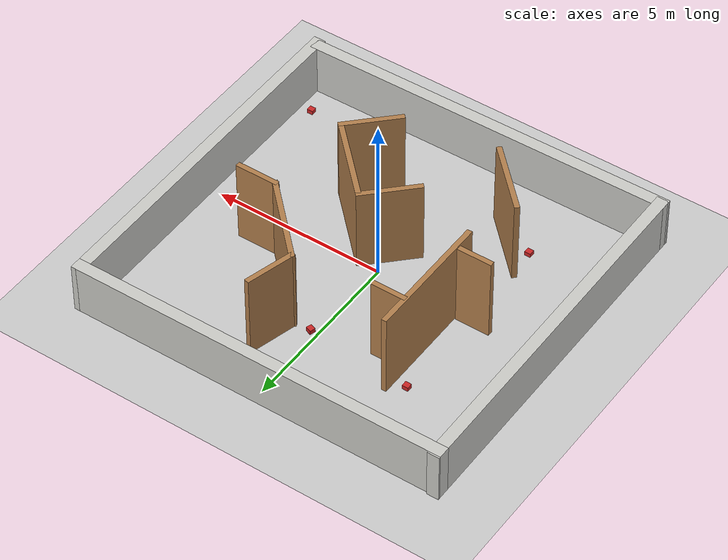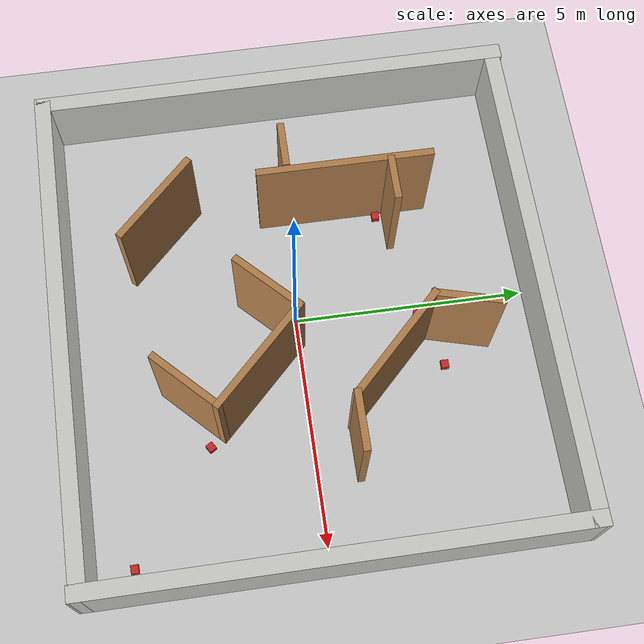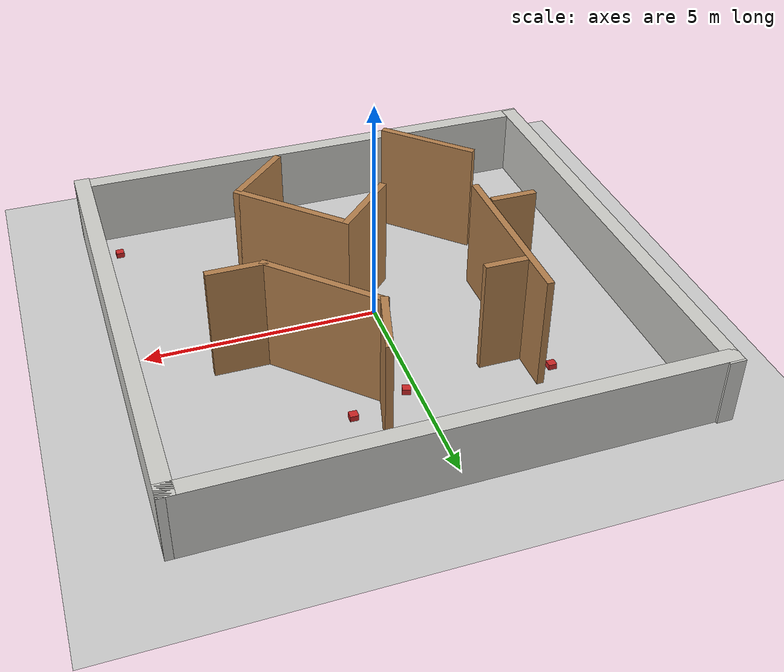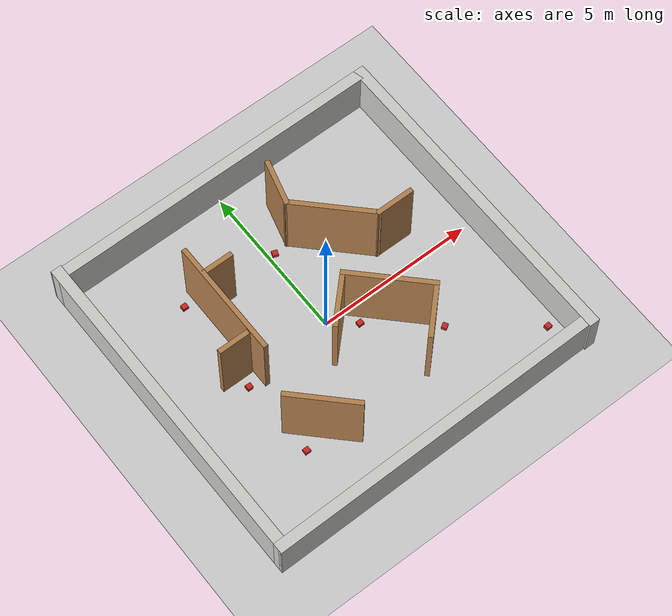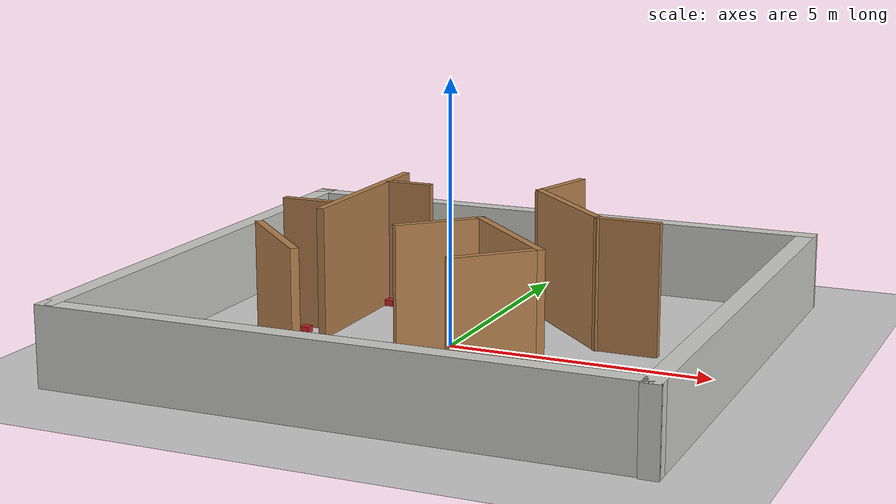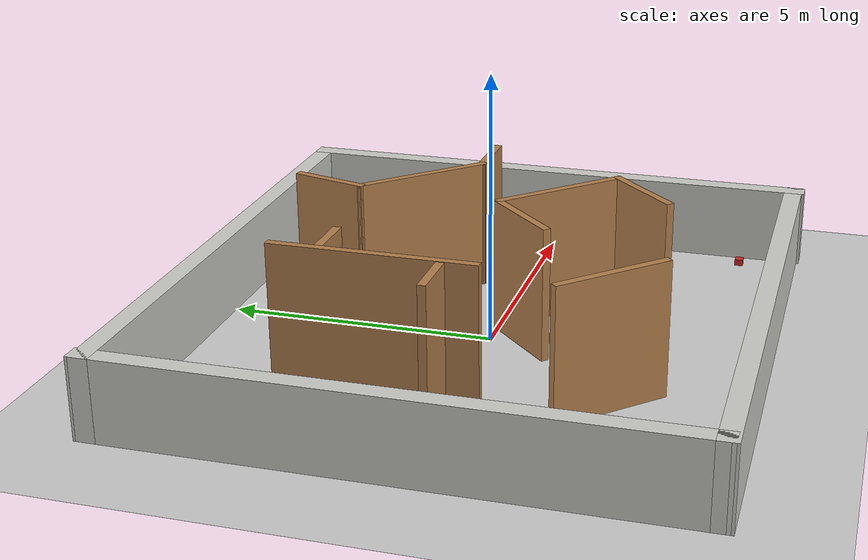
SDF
<sdf version="1.7">
 <world name="default">
  <light name="sun" type="directional">
   <cast_shadows>0</cast_shadows>
   <pose>0 0 10 0 -0 0</pose>
   <diffuse>0.8 0.8 0.8 1</diffuse>
   <specular>0.2 0.2 0.2 1</specular>
   <attenuation>
    <range>1000</range>
    <constant>0.9</constant>
    <linear>0.01</linear>
    <quadratic>0.001</quadratic>
   </attenuation>
   <direction>-0.5 0.1 -0.9</direction>
   <spot><inner_angle>0</inner_angle><outer_angle>0</outer_angle><falloff>0</falloff></spot>
  </light>
  <model name="ground_plane">
   <static>1</static>
   <link name="link">
    <collision name="collision">
     <geometry><plane><normal>0 0 1</normal><size>100 100</size></plane></geometry>
     <surface><friction><ode><mu>100</mu><mu2>50</mu2></ode></friction></surface>
    </collision>
    <visual name="visual">
     <cast_shadows>0</cast_shadows>
     <geometry><plane><normal>0 0 1</normal><size>100 100</size></plane></geometry>
     <material>
      <script><uri>file://media/materials/scripts/gazebo.material</uri><name>Gazebo/Grey</name></script>
     </material>
    </visual>
   </link>
  </model>
  <gravity>0 0 -9.8</gravity>
  <scene><ambient>0.4 0.4 0.4 1</ambient><background>0.7 0.7 0.7 1</background><shadows>1</shadows></scene>
  <magnetic_field>6e-06 2.3e-05 -4.2e-05</magnetic_field>
  <atmosphere type="adiabatic"/>
  <physics type="ode">
   <max_step_size>0.001</max_step_size>
   <real_time_factor>1</real_time_factor>
   <real_time_update_rate>1000</real_time_update_rate>
  </physics>
  <audio><device>default</device></audio>
  <spherical_coordinates>
   <surface_model>EARTH_WGS84</surface_model>
   <latitude_deg>0</latitude_deg>
   <longitude_deg>0</longitude_deg>
   <elevation>0</elevation>
   <heading_deg>0</heading_deg>
  </spherical_coordinates>
  <model name="blue_box_clone_1_clone">
   <link name="link">
    <inertial>
     <mass>1</mass>
     <inertia>
      <ixx>0.166667</ixx>
      <ixy>0</ixy>
      <ixz>0</ixz>
      <iyy>0.166667</iyy>
      <iyz>0</iyz>
      <izz>0.166667</izz>
     </inertia>
    </inertial>
    <visual name="visual">
     <geometry><box><size>0.177426 0.164052 0.124949</size></box></geometry>
     <material>
      <script><name>Gazebo/Red</name><uri>file://media/materials/scripts/gazebo.material</uri></script>
      <shader type="pixel"><normal_map>__default__</normal_map></shader>
      <ambient>0 0 1 1</ambient>
      <diffuse>0 0 1 1</diffuse>
      <specular>0.1 0.1 0.1 1</specular>
      <emissive>0 0 0 1</emissive>
     </material>
    </visual>
    <collision name="collision">
     <geometry><box><size>0.177426 0.164052 0.124949</size></box></geometry>
     <surface>
      <friction>
       <ode><mu>1</mu><mu2>1</mu2><fdir1>0 0 0</fdir1><slip1>0</slip1><slip2>0</slip2></ode>
       <torsional>
        <coefficient>1</coefficient>
        <patch_radius>0</patch_radius>
        <surface_radius>0</surface_radius>
        <use_patch_radius>1</use_patch_radius>
        <ode><slip>0</slip></ode>
       </torsional>
      </friction>
      <bounce><restitution_coefficient>0</restitution_coefficient><threshold>1e+06</threshold></bounce>
      <contact>
       <collide_without_contact>0</collide_without_contact>
       <collide_without_contact_bitmask>1</collide_without_contact_bitmask>
       <collide_bitmask>1</collide_bitmask>
       <ode>
        <soft_cfm>0</soft_cfm>
        <soft_erp>0.2</soft_erp>
        <kp>1e+13</kp>
        <kd>1</kd>
        <max_vel>0.01</max_vel>
        <min_depth>0</min_depth>
       </ode>
       <bullet>
        <split_impulse>1</split_impulse>
        <split_impulse_penetration_threshold>-0.01</split_impulse_penetration_threshold>
        <soft_cfm>0</soft_cfm>
        <soft_erp>0.2</soft_erp>
        <kp>1e+13</kp>
        <kd>1</kd>
       </bullet>
      </contact>
     </surface>
    </collision>
   </link>
   <static>0</static>
   <pose>-2.85654 2.86595 0.062475 -1e-06 -3e-06 1e-06</pose>
  </model>
  <model name="unit_box_1_clone_0_clone_clone">
   <link name="link">
    <inertial>
     <mass>1</mass>
     <inertia>
      <ixx>0.166667</ixx>
      <ixy>0</ixy>
      <ixz>0</ixz>
      <iyy>0.166667</iyy>
      <iyz>0</iyz>
      <izz>0.166667</izz>
     </inertia>
    </inertial>
    <visual name="visual">
     <geometry><box><size>0.177426 0.164052 0.124949</size></box></geometry>
     <material>
      <script><name>Gazebo/Red</name><uri>file://media/materials/scripts/gazebo.material</uri></script>
      <shader type="pixel"><normal_map>__default__</normal_map></shader>
      <ambient>1 0 0 1</ambient>
      <diffuse>1 0 0 1</diffuse>
      <specular>0.1 0.1 0.1 1</specular>
      <emissive>0 0 0 1</emissive>
     </material>
    </visual>
    <collision name="collision">
     <geometry><box><size>0.177426 0.164052 0.124949</size></box></geometry>
     <surface>
      <friction>
       <ode><mu>1</mu><mu2>1</mu2><fdir1>0 0 0</fdir1><slip1>0</slip1><slip2>0</slip2></ode>
       <torsional>
        <coefficient>1</coefficient>
        <patch_radius>0</patch_radius>
        <surface_radius>0</surface_radius>
        <use_patch_radius>1</use_patch_radius>
        <ode><slip>0</slip></ode>
       </torsional>
      </friction>
      <bounce><restitution_coefficient>0</restitution_coefficient><threshold>1e+06</threshold></bounce>
      <contact>
       <collide_without_contact>0</collide_without_contact>
       <collide_without_contact_bitmask>1</collide_without_contact_bitmask>
       <collide_bitmask>1</collide_bitmask>
       <ode>
        <soft_cfm>0</soft_cfm>
        <soft_erp>0.2</soft_erp>
        <kp>1e+13</kp>
        <kd>1</kd>
        <max_vel>0.01</max_vel>
        <min_depth>0</min_depth>
       </ode>
       <bullet>
        <split_impulse>1</split_impulse>
        <split_impulse_penetration_threshold>-0.01</split_impulse_penetration_threshold>
        <soft_cfm>0</soft_cfm>
        <soft_erp>0.2</soft_erp>
        <kp>1e+13</kp>
        <kd>1</kd>
       </bullet>
      </contact>
     </surface>
    </collision>
   </link>
   <static>0</static>
   <pose>-2.2666 2.12737 0.062474 0 -0 -1.2e-05</pose>
  </model>
  <model name="Green1_clone_0_clone">
   <link name="link">
    <inertial>
     <mass>1</mass>
     <inertia>
      <ixx>0.166667</ixx>
      <ixy>0</ixy>
      <ixz>0</ixz>
      <iyy>0.166667</iyy>
      <iyz>0</iyz>
      <izz>0.166667</izz>
     </inertia>
    </inertial>
    <visual name="visual">
     <geometry><box><size>0.177426 0.164052 0.124949</size></box></geometry>
     <material>
      <script><name>Gazebo/Red</name><uri>file://media/materials/scripts/gazebo.material</uri></script>
      <shader type="pixel"><normal_map>__default__</normal_map></shader>
      <ambient>0 1 0 1</ambient>
      <diffuse>0 1 0 1</diffuse>
      <specular>0.1 0.1 0.1 1</specular>
      <emissive>0 0 0 1</emissive>
     </material>
    </visual>
    <collision name="collision">
     <geometry><box><size>0.177426 0.164052 0.124949</size></box></geometry>
     <surface>
      <friction>
       <ode><mu>1</mu><mu2>1</mu2><fdir1>0 0 0</fdir1><slip1>0</slip1><slip2>0</slip2></ode>
       <torsional>
        <coefficient>1</coefficient>
        <patch_radius>0</patch_radius>
        <surface_radius>0</surface_radius>
        <use_patch_radius>1</use_patch_radius>
        <ode><slip>0</slip></ode>
       </torsional>
      </friction>
      <bounce><restitution_coefficient>0</restitution_coefficient><threshold>1e+06</threshold></bounce>
      <contact>
       <collide_without_contact>0</collide_without_contact>
       <collide_without_contact_bitmask>1</collide_without_contact_bitmask>
       <collide_bitmask>1</collide_bitmask>
       <ode>
        <soft_cfm>0</soft_cfm>
        <soft_erp>0.2</soft_erp>
        <kp>1e+13</kp>
        <kd>1</kd>
        <max_vel>0.01</max_vel>
        <min_depth>0</min_depth>
       </ode>
       <bullet>
        <split_impulse>1</split_impulse>
        <split_impulse_penetration_threshold>-0.01</split_impulse_penetration_threshold>
        <soft_cfm>0</soft_cfm>
        <soft_erp>0.2</soft_erp>
        <kp>1e+13</kp>
        <kd>1</kd>
       </bullet>
      </contact>
     </surface>
    </collision>
   </link>
   <static>0</static>
   <pose>-2.90127 -0.248467 0.062475 3e-06 1e-06 -1.4e-05</pose>
  </model>
  <model name="Green1_clone_0_clone_0">
   <link name="link">
    <inertial>
     <mass>1</mass>
     <inertia>
      <ixx>0.166667</ixx>
      <ixy>0</ixy>
      <ixz>0</ixz>
      <iyy>0.166667</iyy>
      <iyz>0</iyz>
      <izz>0.166667</izz>
     </inertia>
    </inertial>
    <visual name="visual">
     <geometry><box><size>0.177426 0.164052 0.124949</size></box></geometry>
     <material>
      <script><name>Gazebo/Red</name><uri>file://media/materials/scripts/gazebo.material</uri></script>
      <shader type="pixel"><normal_map>__default__</normal_map></shader>
      <ambient>0 1 0 1</ambient>
      <diffuse>0 1 0 1</diffuse>
      <specular>0.1 0.1 0.1 1</specular>
      <emissive>0 0 0 1</emissive>
     </material>
    </visual>
    <collision name="collision">
     <geometry><box><size>0.177426 0.164052 0.124949</size></box></geometry>
     <surface>
      <friction>
       <ode><mu>1</mu><mu2>1</mu2><fdir1>0 0 0</fdir1><slip1>0</slip1><slip2>0</slip2></ode>
       <torsional>
        <coefficient>1</coefficient>
        <patch_radius>0</patch_radius>
        <surface_radius>0</surface_radius>
        <use_patch_radius>1</use_patch_radius>
        <ode><slip>0</slip></ode>
       </torsional>
      </friction>
      <bounce><restitution_coefficient>0</restitution_coefficient><threshold>1e+06</threshold></bounce>
      <contact>
       <collide_without_contact>0</collide_without_contact>
       <collide_without_contact_bitmask>1</collide_without_contact_bitmask>
       <collide_bitmask>1</collide_bitmask>
       <ode>
        <soft_cfm>0</soft_cfm>
        <soft_erp>0.2</soft_erp>
        <kp>1e+13</kp>
        <kd>1</kd>
        <max_vel>0.01</max_vel>
        <min_depth>0</min_depth>
       </ode>
       <bullet>
        <split_impulse>1</split_impulse>
        <split_impulse_penetration_threshold>-0.01</split_impulse_penetration_threshold>
        <soft_cfm>0</soft_cfm>
        <soft_erp>0.2</soft_erp>
        <kp>1e+13</kp>
        <kd>1</kd>
       </bullet>
      </contact>
     </surface>
    </collision>
   </link>
   <static>0</static>
   <pose>-2.80472 -2.75225 0.062475 0 -4e-06 -6e-06</pose>
  </model>
  <model name="unit_box_1_clone_0_clone_clone_clone">
   <link name="link">
    <inertial>
     <mass>1</mass>
     <inertia>
      <ixx>0.166667</ixx>
      <ixy>0</ixy>
      <ixz>0</ixz>
      <iyy>0.166667</iyy>
      <iyz>0</iyz>
      <izz>0.166667</izz>
     </inertia>
    </inertial>
    <visual name="visual">
     <geometry><box><size>0.177426 0.164052 0.124949</size></box></geometry>
     <material>
      <script><name>Gazebo/Red</name><uri>file://media/materials/scripts/gazebo.material</uri></script>
      <shader type="pixel"><normal_map>__default__</normal_map></shader>
      <ambient>1 0 0 1</ambient>
      <diffuse>1 0 0 1</diffuse>
      <specular>0.1 0.1 0.1 1</specular>
      <emissive>0 0 0 1</emissive>
     </material>
    </visual>
    <collision name="collision">
     <geometry><box><size>0.177426 0.164052 0.124949</size></box></geometry>
     <surface>
      <friction>
       <ode><mu>1</mu><mu2>1</mu2><fdir1>0 0 0</fdir1><slip1>0</slip1><slip2>0</slip2></ode>
       <torsional>
        <coefficient>1</coefficient>
        <patch_radius>0</patch_radius>
        <surface_radius>0</surface_radius>
        <use_patch_radius>1</use_patch_radius>
        <ode><slip>0</slip></ode>
       </torsional>
      </friction>
      <bounce><restitution_coefficient>0</restitution_coefficient><threshold>1e+06</threshold></bounce>
      <contact>
       <collide_without_contact>0</collide_without_contact>
       <collide_without_contact_bitmask>1</collide_without_contact_bitmask>
       <collide_bitmask>1</collide_bitmask>
       <ode>
        <soft_cfm>0</soft_cfm>
        <soft_erp>0.2</soft_erp>
        <kp>1e+13</kp>
        <kd>1</kd>
        <max_vel>0.01</max_vel>
        <min_depth>0</min_depth>
       </ode>
       <bullet>
        <split_impulse>1</split_impulse>
        <split_impulse_penetration_threshold>-0.01</split_impulse_penetration_threshold>
        <soft_cfm>0</soft_cfm>
        <soft_erp>0.2</soft_erp>
        <kp>1e+13</kp>
        <kd>1</kd>
       </bullet>
      </contact>
     </surface>
    </collision>
   </link>
   <static>0</static>
   <pose>4.90389 -3.92478 0.062475 -0 4e-06 0.034203</pose>
  </model>
  <model name="blue_box_clone_1_clone_0">
   <link name="link">
    <inertial>
     <mass>1</mass>
     <inertia>
      <ixx>0.166667</ixx>
      <ixy>0</ixy>
      <ixz>0</ixz>
      <iyy>0.166667</iyy>
      <iyz>0</iyz>
      <izz>0.166667</izz>
     </inertia>
    </inertial>
    <visual name="visual">
     <geometry><box><size>0.177426 0.164052 0.124949</size></box></geometry>
     <material>
      <script><name>Gazebo/Red</name><uri>file://media/materials/scripts/gazebo.material</uri></script>
      <shader type="pixel"><normal_map>__default__</normal_map></shader>
      <ambient>0 0 1 1</ambient>
      <diffuse>0 0 1 1</diffuse>
      <specular>0.1 0.1 0.1 1</specular>
      <emissive>0 0 0 1</emissive>
     </material>
    </visual>
    <collision name="collision">
     <geometry><box><size>0.177426 0.164052 0.124949</size></box></geometry>
     <surface>
      <friction>
       <ode><mu>1</mu><mu2>1</mu2><fdir1>0 0 0</fdir1><slip1>0</slip1><slip2>0</slip2></ode>
       <torsional>
        <coefficient>1</coefficient>
        <patch_radius>0</patch_radius>
        <surface_radius>0</surface_radius>
        <use_patch_radius>1</use_patch_radius>
        <ode><slip>0</slip></ode>
       </torsional>
      </friction>
      <bounce><restitution_coefficient>0</restitution_coefficient><threshold>1e+06</threshold></bounce>
      <contact>
       <collide_without_contact>0</collide_without_contact>
       <collide_without_contact_bitmask>1</collide_without_contact_bitmask>
       <collide_bitmask>1</collide_bitmask>
       <ode>
        <soft_cfm>0</soft_cfm>
        <soft_erp>0.2</soft_erp>
        <kp>1e+13</kp>
        <kd>1</kd>
        <max_vel>0.01</max_vel>
        <min_depth>0</min_depth>
       </ode>
       <bullet>
        <split_impulse>1</split_impulse>
        <split_impulse_penetration_threshold>-0.01</split_impulse_penetration_threshold>
        <soft_cfm>0</soft_cfm>
        <soft_erp>0.2</soft_erp>
        <kp>1e+13</kp>
        <kd>1</kd>
       </bullet>
      </contact>
     </surface>
    </collision>
   </link>
   <static>0</static>
   <pose>2.59924 -2.13322 0.062474 -4e-06 2e-06 0.553438</pose>
  </model>
  <model name="unit_box_1_clone_0_clone_clone_0">
   <link name="link">
    <inertial>
     <mass>1</mass>
     <inertia>
      <ixx>0.166667</ixx>
      <ixy>0</ixy>
      <ixz>0</ixz>
      <iyy>0.166667</iyy>
      <iyz>0</iyz>
      <izz>0.166667</izz>
     </inertia>
    </inertial>
    <visual name="visual">
     <geometry><box><size>0.177426 0.164052 0.124949</size></box></geometry>
     <material>
      <script><name>Gazebo/Red</name><uri>file://media/materials/scripts/gazebo.material</uri></script>
      <shader type="pixel"><normal_map>__default__</normal_map></shader>
      <ambient>1 0 0 1</ambient>
      <diffuse>1 0 0 1</diffuse>
      <specular>0.1 0.1 0.1 1</specular>
      <emissive>0 0 0 1</emissive>
     </material>
    </visual>
    <collision name="collision">
     <geometry><box><size>0.177426 0.164052 0.124949</size></box></geometry>
     <surface>
      <friction>
       <ode><mu>1</mu><mu2>1</mu2><fdir1>0 0 0</fdir1><slip1>0</slip1><slip2>0</slip2></ode>
       <torsional>
        <coefficient>1</coefficient>
        <patch_radius>0</patch_radius>
        <surface_radius>0</surface_radius>
        <use_patch_radius>1</use_patch_radius>
        <ode><slip>0</slip></ode>
       </torsional>
      </friction>
      <bounce><restitution_coefficient>0</restitution_coefficient><threshold>1e+06</threshold></bounce>
      <contact>
       <collide_without_contact>0</collide_without_contact>
       <collide_without_contact_bitmask>1</collide_without_contact_bitmask>
       <collide_bitmask>1</collide_bitmask>
       <ode>
        <soft_cfm>0</soft_cfm>
        <soft_erp>0.2</soft_erp>
        <kp>1e+13</kp>
        <kd>1</kd>
        <max_vel>0.01</max_vel>
        <min_depth>0</min_depth>
       </ode>
       <bullet>
        <split_impulse>1</split_impulse>
        <split_impulse_penetration_threshold>-0.01</split_impulse_penetration_threshold>
        <soft_cfm>0</soft_cfm>
        <soft_erp>0.2</soft_erp>
        <kp>1e+13</kp>
        <kd>1</kd>
       </bullet>
      </contact>
     </surface>
    </collision>
   </link>
   <static>0</static>
   <pose>0.765875 -0.587187 0.062474 2e-06 -4e-06 -1.9e-05</pose>
  </model>
  <model name="blue_box_clone_1_clone_1">
   <link name="link">
    <inertial>
     <mass>1</mass>
     <inertia>
      <ixx>0.166667</ixx>
      <ixy>0</ixy>
      <ixz>0</ixz>
      <iyy>0.166667</iyy>
      <iyz>0</iyz>
      <izz>0.166667</izz>
     </inertia>
    </inertial>
    <visual name="visual">
     <geometry><box><size>0.177426 0.164052 0.124949</size></box></geometry>
     <material>
      <script><name>Gazebo/Red</name><uri>file://media/materials/scripts/gazebo.material</uri></script>
      <shader type="pixel"><normal_map>__default__</normal_map></shader>
      <ambient>0 0 1 1</ambient>
      <diffuse>0 0 1 1</diffuse>
      <specular>0.1 0.1 0.1 1</specular>
      <emissive>0 0 0 1</emissive>
     </material>
    </visual>
    <collision name="collision">
     <geometry><box><size>0.177426 0.164052 0.124949</size></box></geometry>
     <surface>
      <friction>
       <ode><mu>1</mu><mu2>1</mu2><fdir1>0 0 0</fdir1><slip1>0</slip1><slip2>0</slip2></ode>
       <torsional>
        <coefficient>1</coefficient>
        <patch_radius>0</patch_radius>
        <surface_radius>0</surface_radius>
        <use_patch_radius>1</use_patch_radius>
        <ode><slip>0</slip></ode>
       </torsional>
      </friction>
      <bounce><restitution_coefficient>0</restitution_coefficient><threshold>1e+06</threshold></bounce>
      <contact>
       <collide_without_contact>0</collide_without_contact>
       <collide_without_contact_bitmask>1</collide_without_contact_bitmask>
       <collide_bitmask>1</collide_bitmask>
       <ode>
        <soft_cfm>0</soft_cfm>
        <soft_erp>0.2</soft_erp>
        <kp>1e+13</kp>
        <kd>1</kd>
        <max_vel>0.01</max_vel>
        <min_depth>0</min_depth>
       </ode>
       <bullet>
        <split_impulse>1</split_impulse>
        <split_impulse_penetration_threshold>-0.01</split_impulse_penetration_threshold>
        <soft_cfm>0</soft_cfm>
        <soft_erp>0.2</soft_erp>
        <kp>1e+13</kp>
        <kd>1</kd>
       </bullet>
      </contact>
     </surface>
    </collision>
   </link>
   <static>0</static>
   <pose>1.44619 3.05166 0.062475 0 -4e-06 -0.019331</pose>
  </model>
  <model name="Green1_clone_0_clone_1">
   <link name="link">
    <inertial>
     <mass>1</mass>
     <inertia>
      <ixx>0.166667</ixx>
      <ixy>0</ixy>
      <ixz>0</ixz>
      <iyy>0.166667</iyy>
      <iyz>0</iyz>
      <izz>0.166667</izz>
     </inertia>
    </inertial>
    <visual name="visual">
     <geometry><box><size>0.177426 0.164052 0.124949</size></box></geometry>
     <material>
      <script><name>Gazebo/Red</name><uri>file://media/materials/scripts/gazebo.material</uri></script>
      <shader type="pixel"><normal_map>__default__</normal_map></shader>
      <ambient>0 1 0 1</ambient>
      <diffuse>0 1 0 1</diffuse>
      <specular>0.1 0.1 0.1 1</specular>
      <emissive>0 0 0 1</emissive>
     </material>
    </visual>
    <collision name="collision">
     <geometry><box><size>0.177426 0.164052 0.124949</size></box></geometry>
     <surface>
      <friction>
       <ode><mu>1</mu><mu2>1</mu2><fdir1>0 0 0</fdir1><slip1>0</slip1><slip2>0</slip2></ode>
       <torsional>
        <coefficient>1</coefficient>
        <patch_radius>0</patch_radius>
        <surface_radius>0</surface_radius>
        <use_patch_radius>1</use_patch_radius>
        <ode><slip>0</slip></ode>
       </torsional>
      </friction>
      <bounce><restitution_coefficient>0</restitution_coefficient><threshold>1e+06</threshold></bounce>
      <contact>
       <collide_without_contact>0</collide_without_contact>
       <collide_without_contact_bitmask>1</collide_without_contact_bitmask>
       <collide_bitmask>1</collide_bitmask>
       <ode>
        <soft_cfm>0</soft_cfm>
        <soft_erp>0.2</soft_erp>
        <kp>1e+13</kp>
        <kd>1</kd>
        <max_vel>0.01</max_vel>
        <min_depth>0</min_depth>
       </ode>
       <bullet>
        <split_impulse>1</split_impulse>
        <split_impulse_penetration_threshold>-0.01</split_impulse_penetration_threshold>
        <soft_cfm>0</soft_cfm>
        <soft_erp>0.2</soft_erp>
        <kp>1e+13</kp>
        <kd>1</kd>
       </bullet>
      </contact>
     </surface>
    </collision>
   </link>
   <static>0</static>
   <pose>0.209586 2.65507 0.062475 3e-06 1e-06 -0.336547</pose>
  </model>
  <model name="build_3">
   <pose>0.047767 0.13707 0 0 -0 0</pose>
   <link name="Wall_0">
    <collision name="Wall_0_Collision">
     <geometry><box><size>11.0853 0.35 1.5</size></box></geometry>
     <pose>0 0 0.75 0 -0 0</pose>
    </collision>
    <visual name="Wall_0_Visual">
     <pose>0 0 0.75 0 -0 0</pose>
     <geometry><box><size>11.0853 0.35 1.5</size></box></geometry>
     <material>
      <script><uri>file://media/materials/scripts/gazebo.material</uri><name>Gazebo/CeilingTiled</name></script>
      <ambient>1 1 1 1</ambient>
     </material>
     <meta><layer>0</layer></meta>
    </visual>
    <pose>-0.023363 5.07746 0 0 -0 0.004374</pose>
   </link>
   <link name="Wall_1">
    <collision name="Wall_1_Collision">
     <geometry><box><size>10.5043 0.35 1.5</size></box></geometry>
     <pose>0 0 0.75 0 -0 0</pose>
    </collision>
    <visual name="Wall_1_Visual">
     <pose>0 0 0.75 0 -0 0</pose>
     <geometry><box><size>10.5043 0.35 1.5</size></box></geometry>
     <material>
      <script><uri>file://media/materials/scripts/gazebo.material</uri><name>Gazebo/CeilingTiled</name></script>
      <ambient>1 1 1 1</ambient>
     </material>
     <meta><layer>0</layer></meta>
    </visual>
    <pose>5.36723 0.023839 0 0 -0 -1.56627</pose>
   </link>
   <link name="Wall_16">
    <collision name="Wall_16_Collision">
     <geometry><box><size>3.75 0.15 2.5</size></box></geometry>
     <pose>0 0 1.25 0 -0 0</pose>
    </collision>
    <visual name="Wall_16_Visual">
     <pose>0 0 1.25 0 -0 0</pose>
     <geometry><box><size>3.75 0.15 2.5</size></box></geometry>
     <material>
      <script><uri>file://media/materials/scripts/gazebo.material</uri><name>Gazebo/Wood</name></script>
      <ambient>1 1 1 1</ambient>
     </material>
     <meta><layer>0</layer></meta>
    </visual>
    <pose>-2.47809 1.2467 0 0 -0 -1.5708</pose>
   </link>
   <link name="Wall_18">
    <collision name="Wall_18_Collision">
     <geometry><box><size>1 0.15 2.5</size></box></geometry>
     <pose>0 0 1.25 0 -0 0</pose>
    </collision>
    <visual name="Wall_18_Visual">
     <pose>0 0 1.25 0 -0 0</pose>
     <geometry><box><size>1 0.15 2.5</size></box></geometry>
     <material>
      <script><uri>file://media/materials/scripts/gazebo.material</uri><name>Gazebo/Wood</name></script>
      <ambient>1 1 1 1</ambient>
     </material>
     <meta><layer>0</layer></meta>
    </visual>
    <pose>-3.07661 0.02265 0 0 -0 0</pose>
   </link>
   <link name="Wall_2">
    <collision name="Wall_2_Collision">
     <geometry><box><size>11.0856 0.35 1.5</size></box></geometry>
     <pose>0 0 0.75 0 -0 0</pose>
    </collision>
    <visual name="Wall_2_Visual">
     <pose>0 0 0.75 0 -0 0</pose>
     <geometry><box><size>11.0856 0.35 1.5</size></box></geometry>
     <material>
      <script><uri>file://media/materials/scripts/gazebo.material</uri><name>Gazebo/CeilingTiled</name></script>
      <ambient>1 1 1 1</ambient>
     </material>
     <meta><layer>0</layer></meta>
    </visual>
    <pose>0.022637 -5.05347 0 0 -0 -3.13288</pose>
   </link>
   <link name="Wall_20">
    <collision name="Wall_20_Collision">
     <geometry><box><size>1 0.15 2.5</size></box></geometry>
     <pose>0 0 1.25 0 -0 0</pose>
    </collision>
    <visual name="Wall_20_Visual">
     <pose>0 0 1.25 0 -0 0</pose>
     <geometry><box><size>1 0.15 2.5</size></box></geometry>
     <material>
      <script><uri>file://media/materials/scripts/gazebo.material</uri><name>Gazebo/Wood</name></script>
      <ambient>1 1 1 1</ambient>
     </material>
     <meta><layer>0</layer></meta>
    </visual>
    <pose>-2.00656 2.20927 0 0 -0 0</pose>
   </link>
   <link name="Wall_22">
    <collision name="Wall_22_Collision">
     <geometry><box><size>1.5 0.15 2.5</size></box></geometry>
     <pose>0 0 1.25 0 -0 0</pose>
    </collision>
    <visual name="Wall_22_Visual">
     <pose>0 0 1.25 0 -0 0</pose>
     <geometry><box><size>1.5 0.15 2.5</size></box></geometry>
     <material>
      <script><uri>file://media/materials/scripts/gazebo.material</uri><name>Gazebo/Wood</name></script>
      <ambient>1 1 1 1</ambient>
     </material>
     <meta><layer>0</layer></meta>
    </visual>
    <pose>0.836506 3.23213 0 0 -0 -1.8326</pose>
   </link>
   <link name="Wall_23">
    <collision name="Wall_23_Collision">
     <geometry><box><size>2.75 0.15 2.5</size></box></geometry>
     <pose>0 0 1.25 0 -0 0</pose>
    </collision>
    <visual name="Wall_23_Visual">
     <pose>0 0 1.25 0 -0 0</pose>
     <geometry><box><size>2.75 0.15 2.5</size></box></geometry>
     <material>
      <script><uri>file://media/materials/scripts/gazebo.material</uri><name>Gazebo/Wood</name></script>
      <ambient>1 1 1 1</ambient>
     </material>
     <meta><layer>0</layer></meta>
    </visual>
    <pose>1.58104 1.6609 0 0 -0 -0.785398</pose>
   </link>
   <link name="Wall_24">
    <collision name="Wall_24_Collision">
     <geometry><box><size>1.25 0.15 2.5</size></box></geometry>
     <pose>0 0 1.25 0 -0 0</pose>
    </collision>
    <visual name="Wall_24_Visual">
     <pose>0 0 1.25 0 -0 0</pose>
     <geometry><box><size>1.25 0.15 2.5</size></box></geometry>
     <material>
      <script><uri>file://media/materials/scripts/gazebo.material</uri><name>Gazebo/Wood</name></script>
      <ambient>1 1 1 1</ambient>
     </material>
     <meta><layer>0</layer></meta>
    </visual>
    <pose>3.05028 0.741657 0 0 -0 0</pose>
   </link>
   <link name="Wall_3">
    <collision name="Wall_3_Collision">
     <geometry><box><size>10.5043 0.35 1.5</size></box></geometry>
     <pose>0 0 0.75 0 -0 0</pose>
    </collision>
    <visual name="Wall_3_Visual">
     <pose>0 0 0.75 0 -0 0</pose>
     <geometry><box><size>10.5043 0.35 1.5</size></box></geometry>
     <material>
      <script><uri>file://media/materials/scripts/gazebo.material</uri><name>Gazebo/CeilingTiled</name></script>
      <ambient>1 1 1 1</ambient>
     </material>
     <meta><layer>0</layer></meta>
    </visual>
    <pose>-5.36796 0.023411 0 0 -0 1.57533</pose>
   </link>
   <link name="Wall_33">
    <collision name="Wall_33_Collision">
     <geometry><box><size>2.75 0.15 2.5</size></box></geometry>
     <pose>0 0 1.25 0 -0 0</pose>
    </collision>
    <visual name="Wall_33_Visual">
     <pose>0 0 1.25 0 -0 0</pose>
     <geometry><box><size>2.75 0.15 2.5</size></box></geometry>
     <material>
      <script><uri>file://media/materials/scripts/gazebo.material</uri><name>Gazebo/Wood</name></script>
      <ambient>1 1 1 1</ambient>
     </material>
     <meta><layer>0</layer></meta>
    </visual>
    <pose>1.46521 -1.03616 0 0 -0 -0.785398</pose>
   </link>
   <link name="Wall_34">
    <collision name="Wall_34_Collision">
     <geometry><box><size>1.75 0.15 2.5</size></box></geometry>
     <pose>0 0 1.25 0 -0 0</pose>
    </collision>
    <visual name="Wall_34_Visual">
     <pose>0 0 1.25 0 -0 0</pose>
     <geometry><box><size>1.75 0.15 2.5</size></box></geometry>
     <material>
      <script><uri>file://media/materials/scripts/gazebo.material</uri><name>Gazebo/Wood</name></script>
      <ambient>1 1 1 1</ambient>
     </material>
     <meta><layer>0</layer></meta>
    </visual>
    <pose>1.81876 -2.52108 0 0 -0 -2.35619</pose>
   </link>
   <link name="Wall_36">
    <collision name="Wall_36_Collision">
     <geometry><box><size>1.75 0.15 2.5</size></box></geometry>
     <pose>0 0 1.25 0 -0 0</pose>
    </collision>
    <visual name="Wall_36_Visual">
     <pose>0 0 1.25 0 -0 0</pose>
     <geometry><box><size>1.75 0.15 2.5</size></box></geometry>
     <material>
      <script><uri>file://media/materials/scripts/gazebo.material</uri><name>Gazebo/Wood</name></script>
      <ambient>1 1 1 1</ambient>
     </material>
     <meta><layer>0</layer></meta>
    </visual>
    <pose>-0.019716 -0.682607 0 0 -0 -2.35619</pose>
   </link>
   <link name="Wall_38">
    <collision name="Wall_38_Collision">
     <geometry><box><size>2.25 0.15 2.5</size></box></geometry>
     <pose>0 0 1.25 0 -0 0</pose>
    </collision>
    <visual name="Wall_38_Visual">
     <pose>0 0 1.25 0 -0 0</pose>
     <geometry><box><size>2.25 0.15 2.5</size></box></geometry>
     <material>
      <script><uri>file://media/materials/scripts/gazebo.material</uri><name>Gazebo/Wood</name></script>
      <ambient>1 1 1 1</ambient>
     </material>
     <meta><layer>0</layer></meta>
    </visual>
    <pose>-2.20086 -2.76686 0 0 -0 -0.785398</pose>
   </link>
   <static>1</static>
  </model>
 </world>
</sdf>
